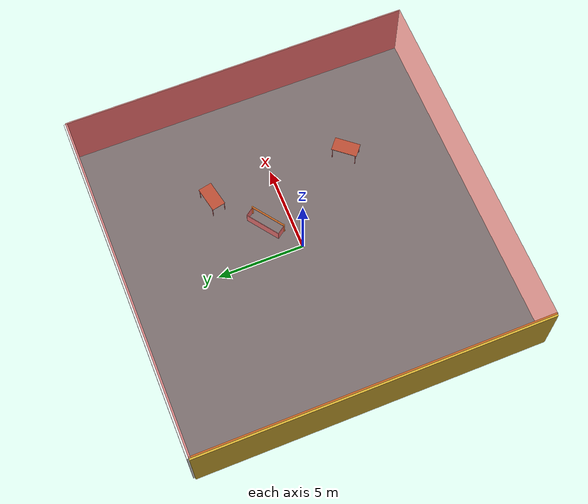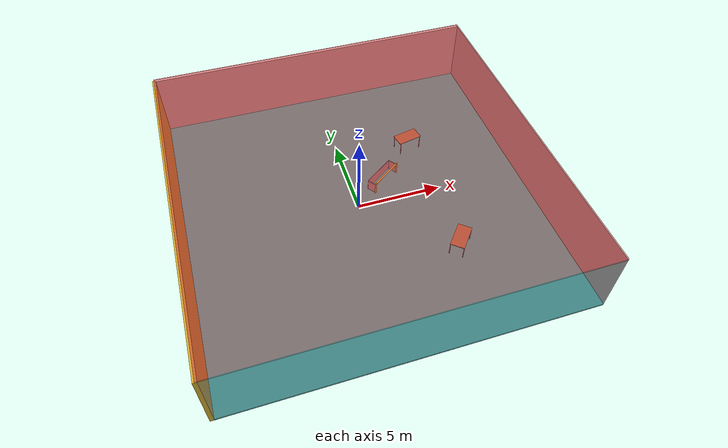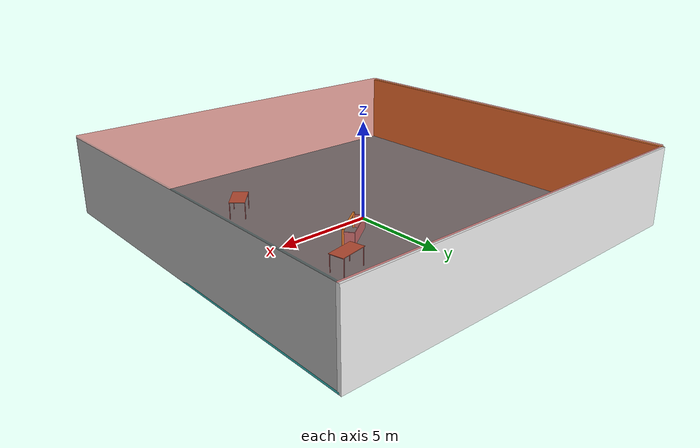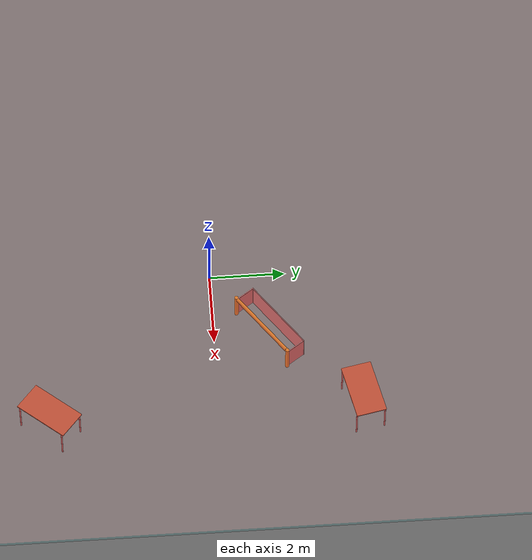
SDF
<sdf version="1.4">
 <world name="default">
  <physics type="ode">
   <max_step_size>0.001</max_step_size>
   <real_time_factor>1</real_time_factor>
   <real_time_update_rate>1000</real_time_update_rate>
   <gravity>0 0 -9.8</gravity>
  </physics>
  <scene><ambient>0.4 0.4 0.4 1</ambient><background>0.7 0.7 0.7 1</background><shadows>1</shadows></scene>
  <model name="Surrounding">
   <static>1</static>
   <link name="Ceiling">
    <collision name="Ceiling_Collision"><geometry><box><size>20 20 0.1</size></box></geometry></collision>
    <visual name="Ceiling_Visual">
     <geometry><box><size>20 20 0.1</size></box></geometry>
     <material>
      <script><uri>file://media/materials/scripts/gazebo.material</uri><name>Gazebo/RedTransparent</name></script>
     </material>
    </visual>
    <pose>0 0 4.05 0 0 0</pose>
   </link>
   <link name="Wall_South">
    <collision name="Wall_South_Collision">
     <geometry><box><size>20 0 4</size></box></geometry>
     <pose>0 0 2 0 -0 0</pose>
    </collision>
    <visual name="Wall_South_Visual">
     <pose>0 0 2 0 -0 0</pose>
     <geometry><box><size>20 0 4</size></box></geometry>
     <material>
      <script><uri>file://media/materials/scripts/gazebo.material</uri><name>Gazebo/GreyTransparent</name></script>
     </material>
    </visual>
    <velocity_decay><linear>0</linear><angular>0</angular></velocity_decay>
    <pose>0 -10 0 0 -0 0</pose>
   </link>
   <link name="Wall_East">
    <collision name="Wall_21_Collision">
     <geometry><box><size>20 0 4</size></box></geometry>
     <pose>0 0 2 0 -0 0</pose>
    </collision>
    <visual name="Wall_21_Visual">
     <pose>0 0 2 0 -0 0</pose>
     <geometry><box><size>20 0 4</size></box></geometry>
     <material>
      <script><uri>file://media/materials/scripts/gazebo.material</uri><name>Gazebo/CloudySky</name></script>
     </material>
    </visual>
    <velocity_decay><linear>0</linear><angular>0</angular></velocity_decay>
    <pose>10 0 0 0 -0 1.5708</pose>
   </link>
   <link name="Wall_North">
    <collision name="Wall_22_Collision">
     <geometry><box><size>20 0.2 4</size></box></geometry>
     <pose>0 0 2 0 -0 0</pose>
    </collision>
    <visual name="Wall_22_Visual">
     <pose>0 0 2 0 -0 0</pose>
     <geometry><box><size>20 0.2 4</size></box></geometry>
     <material>
      <script><uri>file://media/materials/scripts/gazebo.material</uri><name>Gazebo/WhiteGlow</name></script>
     </material>
    </visual>
    <velocity_decay><linear>0</linear><angular>0</angular></velocity_decay>
    <pose>0 10 0 0 -0 0</pose>
   </link>
   <link name="Wall_West">
    <collision name="Wall_23_Collision">
     <geometry><box><size>20 0.2 4</size></box></geometry>
     <pose>0 0 2 0 -0 0</pose>
    </collision>
    <visual name="Wall_23_Visual">
     <pose>0 0 2 0 -0 0</pose>
     <geometry><box><size>20 0.2 4</size></box></geometry>
     <material>
      <script><uri>file://media/materials/scripts/gazebo.material</uri><name>Gazebo/Gold</name></script>
     </material>
    </visual>
    <velocity_decay><linear>0</linear><angular>0</angular></velocity_decay>
    <pose>-10 0 0 0 0 -1.5708</pose>
   </link>
   <link name="Ground_link">
    <collision name="collision">
     <pose>0 0 .05 0 -0 0</pose>
     <geometry><box><size>20 20 0.1</size></box></geometry>
    </collision>
    <visual name="visual">
     <pose>0 0 .05 0 -0 0</pose>
     <geometry><box><size>20 20 0.1</size></box></geometry>
     <material>
      <script>
       <uri>file://media/materials/scripts/gazebo.material</uri>
       <name>Gazebo/TurquoiseGlowOutline</name>
      </script>
     </material>
    </visual>
   </link>
   <static>1</static>
  </model>
  <spherical_coordinates>
   <surface_model>EARTH_WGS84</surface_model>
   <latitude_deg>0</latitude_deg>
   <longitude_deg>0</longitude_deg>
   <elevation>0</elevation>
   <heading_deg>0</heading_deg>
  </spherical_coordinates>
  <light name="lightball_0" type="diffuse">
   <diffuse>0.8 0.8 0.8 1</diffuse>
   <specular>0.2 0.2 0.2 1</specular>
   <attenuation>
    <range>100</range>
    <constant>0.7</constant>
    <linear>0.01</linear>
    <quadratic>0.001</quadratic>
   </attenuation>
   <direction>-0.5 0.1 -0.9</direction>
   <pose>1.76862741102 0.596383354595 1.24913204208 0 0 0</pose>
  </light>
  <light name="lightball_1" type="diffuse">
   <diffuse>0.8 0.8 0.8 1</diffuse>
   <specular>0.2 0.2 0.2 1</specular>
   <attenuation>
    <range>100</range>
    <constant>0.7</constant>
    <linear>0.01</linear>
    <quadratic>0.001</quadratic>
   </attenuation>
   <direction>-0.5 0.1 -0.9</direction>
   <pose>-2.41459259246 -7.038002368 3.1151374388 0 0 0</pose>
  </light>
  <light name="lightball_2" type="diffuse">
   <diffuse>0.8 0.8 0.8 1</diffuse>
   <specular>0.2 0.2 0.2 1</specular>
   <attenuation>
    <range>100</range>
    <constant>0.7</constant>
    <linear>0.01</linear>
    <quadratic>0.001</quadratic>
   </attenuation>
   <direction>-0.5 0.1 -0.9</direction>
   <pose>9.41171915424 1.10720265147 2.20990218348 0 0 0</pose>
  </light>
  <light name="lightball_3" type="diffuse">
   <diffuse>0.8 0.8 0.8 1</diffuse>
   <specular>0.2 0.2 0.2 1</specular>
   <attenuation>
    <range>100</range>
    <constant>0.7</constant>
    <linear>0.01</linear>
    <quadratic>0.001</quadratic>
   </attenuation>
   <direction>-0.5 0.1 -0.9</direction>
   <pose>-5.62700484697 -7.21730056328 1.70547711276 0 0 0</pose>
  </light>
  <light name="lightball_4" type="diffuse">
   <diffuse>0.8 0.8 0.8 1</diffuse>
   <specular>0.2 0.2 0.2 1</specular>
   <attenuation>
    <range>100</range>
    <constant>0.7</constant>
    <linear>0.01</linear>
    <quadratic>0.001</quadratic>
   </attenuation>
   <direction>-0.5 0.1 -0.9</direction>
   <pose>5.8015335922 8.06778620367 1.68933157689 0 0 0</pose>
  </light>
  <light name="lightball_5" type="diffuse">
   <diffuse>0.8 0.8 0.8 1</diffuse>
   <specular>0.2 0.2 0.2 1</specular>
   <attenuation>
    <range>100</range>
    <constant>0.7</constant>
    <linear>0.01</linear>
    <quadratic>0.001</quadratic>
   </attenuation>
   <direction>-0.5 0.1 -0.9</direction>
   <pose>9.02318924554 5.00589356581 1.42304241915 0 0 0</pose>
  </light>
  <light name="lightball_6" type="diffuse">
   <diffuse>0.8 0.8 0.8 1</diffuse>
   <specular>0.2 0.2 0.2 1</specular>
   <attenuation>
    <range>100</range>
    <constant>0.7</constant>
    <linear>0.01</linear>
    <quadratic>0.001</quadratic>
   </attenuation>
   <direction>-0.5 0.1 -0.9</direction>
   <pose>2.8010000402 -3.90854103627 1.77786552272 0 0 0</pose>
  </light>
  <light name="lightball_7" type="diffuse">
   <diffuse>0.8 0.8 0.8 1</diffuse>
   <specular>0.2 0.2 0.2 1</specular>
   <attenuation>
    <range>100</range>
    <constant>0.7</constant>
    <linear>0.01</linear>
    <quadratic>0.001</quadratic>
   </attenuation>
   <direction>-0.5 0.1 -0.9</direction>
   <pose>5.62166290282 -7.4667816025 1.55245017343 0 0 0</pose>
  </light>
  <include>
   <uri>model://robocup_3Dsim_goal</uri>
   <pose>2.08067056511 1.25149467253 0 0 0 2.19163793846</pose>
  </include>
  <include><uri>model://table</uri><pose>4.41721458262 -4.4329032575 0 0 0 0.872197812799</pose></include>
  <include><uri>model://table</uri><pose>4.32184530526 3.75711556145 0 0 0 0.205110342423</pose></include>
 </world>
</sdf>

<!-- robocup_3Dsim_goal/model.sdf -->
<sdf version="1.5">
  <model name="robocup_3d_goal">
    <static>true</static>
    <link name="left_post">
      <pose>0 1.05 0.45 0 0 0</pose>
      <collision name="collision">
        <geometry>
          <cylinder>
            <radius>0.05</radius>
            <length>0.9</length>
          </cylinder>
        </geometry>
      </collision>
      <visual name="visual">
        <geometry>
          <cylinder>
            <radius>0.05</radius>
            <length>0.9</length>
          </cylinder>
        </geometry>
        <material>
          <script>
            <uri>file://media/materials/scripts/gazebo.material</uri>
            <name>Gazebo/ZincYellow</name>
          </script>
        </material>
      </visual>
    </link>
    <link name="left_support_horiz_lower">
      <pose>0.30 1.05 0.01 0 0 0</pose>
      <collision name="collision">
        <geometry>
          <box>
            <size>0.50 0.02 0.02</size>
          </box>
        </geometry>
      </collision>
      <visual name="visual">
        <geometry>
          <box>
            <size>0.50 0.02 0.02</size>
          </box>
        </geometry>
        <material>
          <script>
            <uri>file://media/materials/scripts/gazebo.material</uri>
            <name>Gazebo/White</name>
          </script>
        </material>
      </visual>
    </link>
    <link name="left_support_horiz_upper">
      <pose>0.30 1.05 0.79 0 0 0</pose>
      <collision name="collision">
        <geometry>
          <box>
            <size>0.50 0.02 0.02</size>
          </box>
        </geometry>
      </collision>
      <visual name="visual">
        <geometry>
          <box>
            <size>0.50 0.02 0.02</size>
          </box>
        </geometry>
        <material>
          <script>
            <uri>file://media/materials/scripts/gazebo.material</uri>
            <name>Gazebo/White</name>
          </script>
        </material>
      </visual>
    </link>
    <link name="left_support_vertical">
      <pose>0.56 1.05 0.4 0 1.5708 0</pose>
      <collision name="collision">
        <geometry>
          <box>
            <size>0.80 0.02 0.02</size>
          </box>
        </geometry>
      </collision>
      <visual name="visual">
        <geometry>
          <box>
            <size>0.80 0.02 0.02</size>
          </box>
        </geometry>
        <material>
          <script>
            <uri>file://media/materials/scripts/gazebo.material</uri>
            <name>Gazebo/White</name>
          </script>
        </material>
      </visual>
    </link>
    <link name="right_support_horiz_lower">
      <pose>0.30 -1.05 0.01 0 0 0</pose>
      <collision name="collision">
        <geometry>
          <box>
            <size>0.50 0.02 0.02</size>
          </box>
        </geometry>
      </collision>
      <visual name="visual">
        <geometry>
          <box>
            <size>0.50 0.02 0.02</size>
          </box>
        </geometry>
        <material>
          <script>
            <uri>file://media/materials/scripts/gazebo.material</uri>
            <name>Gazebo/White</name>
          </script>
        </material>
      </visual>
    </link>
    <link name="right_support_horiz_upper">
      <pose>0.30 -1.05 0.79 0 0 0</pose>
      <collision name="collision">
        <geometry>
          <box>
            <size>0.50 0.02 0.02</size>
          </box>
        </geometry>
      </collision>
      <visual name="visual">
        <geometry>
          <box>
            <size>0.50 0.02 0.02</size>
          </box>
        </geometry>
        <material>
          <script>
            <uri>file://media/materials/scripts/gazebo.material</uri>
            <name>Gazebo/White</name>
          </script>
        </material>
      </visual>
    </link>
    <link name="right_support_vertical">
      <pose>0.56 -1.05 0.4 0 1.5708 0</pose>
      <collision name="collision">
        <geometry>
          <box>
            <size>0.80 0.02 0.02</size>
          </box>
        </geometry>
      </collision>
      <visual name="visual">
        <geometry>
          <box>
            <size>0.80 0.02 0.02</size>
          </box>
        </geometry>
        <material>
          <script>
            <uri>file://media/materials/scripts/gazebo.material</uri>
            <name>Gazebo/White</name>
          </script>
        </material>
      </visual>
    </link>
    <link name="center_support_horiz_lower">
      <pose>0.56 0 0.01 0 1.5708 0</pose>
      <collision name="collision">
        <geometry>
          <box>
            <size>0.02 2.08 0.02</size>
          </box>
        </geometry>
      </collision>
      <visual name="visual">
        <geometry>
          <box>
            <size>0.02 2.08 0.02</size>
          </box>
        </geometry>
        <material>
          <script>
            <uri>file://media/materials/scripts/gazebo.material</uri>
            <name>Gazebo/White</name>
          </script>
        </material>
      </visual>
    </link>
    <link name="center_support_horiz_upper">
      <pose>0.56 0 0.79 0 1.5708 0</pose>
      <collision name="collision">
        <geometry>
          <box>
            <size>0.02 2.08 0.02</size>
          </box>
        </geometry>
      </collision>
      <visual name="visual">
        <geometry>
          <box>
            <size>0.02 2.08 0.02</size>
          </box>
        </geometry>
        <material>
          <script>
            <uri>file://media/materials/scripts/gazebo.material</uri>
            <name>Gazebo/White</name>
          </script>
        </material>
      </visual>
    </link>
    <link name="right_post">
      <pose>0 -1.05 0.45 0 0 0</pose>
      <collision name="collision">
        <geometry>
          <cylinder>
            <radius>0.05</radius>
            <length>0.9</length>
          </cylinder>
        </geometry>
      </collision>
      <visual name="visual">
        <geometry>
          <cylinder>
            <radius>0.05</radius>
            <length>0.9</length>
          </cylinder>
        </geometry>
        <material>
          <script>
            <uri>file://media/materials/scripts/gazebo.material</uri>
            <name>Gazebo/ZincYellow</name>
          </script>
        </material>
      </visual>
    </link>
    <link name="crossbar">
      <pose>0 0 0.85 1.57 1.57 0</pose>
      <collision name="collision">
        <geometry>
          <cylinder>
            <radius>0.05</radius>
            <length>2.0</length>
          </cylinder>
        </geometry>
      </collision>
      <visual name="visual">
        <geometry>
          <cylinder>
            <radius>0.05</radius>
            <length>2.0</length>
          </cylinder>
        </geometry>
        <material>
          <script>
            <uri>file://media/materials/scripts/gazebo.material</uri>
            <name>Gazebo/ZincYellow</name>
          </script>
        </material>
      </visual>
    </link>
    <link name="center_net">
      <pose>0.56 0 0.40 0 0 0</pose>
      <collision name="collision">
        <geometry>
          <box>
            <size>0.01 2.1 0.80</size>
          </box>
        </geometry>
      </collision>
      <visual name="visual">
        <geometry>
          <box>
            <size>0.01 2.1 0.80</size>
          </box>
        </geometry>
        <material>
          <script>
            <uri>model://../model_source/models/robocup09_spl_field/materials/scripts/</uri>
            <uri>model://../model_source/models/robocup09_spl_field/materials/textures/</uri>
            <name>RoboCup/Net</name>
          </script>
        </material>
      </visual>
    </link>
    <link name="left_net">
      <pose>0.30 1.05 0.40 0 0 0</pose>
      <collision name="collision">
        <geometry>
          <box>
            <size>0.50 0.01 0.76</size>
          </box>
        </geometry>
      </collision>
      <visual name="visual">
        <geometry>
          <box>
            <size>0.50 0.01 0.76</size>
          </box>
        </geometry>
        <material>
          <script>
            <uri>model://../model_source/models/robocup09_spl_field/materials/scripts/</uri>
            <uri>model://../model_source/models/robocup09_spl_field/materials/textures/</uri>
            <name>RoboCup/Net</name>
          </script>
        </material>
      </visual>
    </link>
    <link name="right_net">
      <pose>0.30 -1.05 0.40 0 0 0</pose>
      <collision name="collision">
        <geometry>
          <box>
            <size>0.50 0.01 0.76</size>
          </box>
        </geometry>
      </collision>
      <visual name="visual">
        <geometry>
          <box>
            <size>0.50 0.01 0.76</size>
          </box>
        </geometry>
        <material>
          <script>
            <uri>model://../model_source/models/robocup09_spl_field/materials/scripts/</uri>
            <uri>model://../model_source/models/robocup09_spl_field/materials/textures/</uri>
            <name>RoboCup/Net</name>
          </script>
        </material>
      </visual>
    </link>
  </model>
</sdf>

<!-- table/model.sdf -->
<sdf version="1.5">
  <model name="table">
    <static>true</static>
    <link name="link">
      <collision name="surface">
        <pose>0 0 1.0 0 0 0</pose>
        <geometry>
          <box>
            <size>1.5 0.8 0.03</size>
          </box>
        </geometry>
        <surface>
          <friction>
            <ode>
              <mu>0.6</mu>
              <mu2>0.6</mu2>
            </ode>
          </friction>
        </surface>
      </collision>
      <visual name="visual1">
        <pose>0 0 1.0 0 0 0</pose>
        <geometry>
          <box>
            <size>1.5 0.8 0.03</size>
          </box>
        </geometry>
        <material>
          <script>
            <uri>model://media/materials/scripts/gazebo.material</uri>
            <name>Gazebo/Wood</name>
          </script>
        </material>
      </visual>
      <collision name="front_left_leg">
        <pose>0.68 0.38 0.5 0 0 0</pose>
        <geometry>
          <cylinder>
            <radius>0.02</radius>
            <length>1.0</length>
          </cylinder>
        </geometry>
      </collision>
      <visual name="front_left_leg">
        <pose>0.68 0.38 0.5 0 0 0</pose>
        <geometry>
          <cylinder>
            <radius>0.02</radius>
            <length>1.0</length>
          </cylinder>
        </geometry>
        <material>
          <script>
            <uri>model://media/materials/scripts/gazebo.material</uri>
            <name>Gazebo/Grey</name>
          </script>
        </material>
      </visual>
      <collision name="front_right_leg">
        <pose>0.68 -0.38 0.5 0 0 0</pose>
        <geometry>
          <cylinder>
            <radius>0.02</radius>
            <length>1.0</length>
          </cylinder>
        </geometry>
      </collision>
      <visual name="front_right_leg">
        <pose>0.68 -0.38 0.5 0 0 0</pose>
        <geometry>
          <cylinder>
            <radius>0.02</radius>
            <length>1.0</length>
          </cylinder>
        </geometry>
        <material>
          <script>
            <uri>model://media/materials/scripts/gazebo.material</uri>
            <name>Gazebo/Grey</name>
          </script>
        </material>
      </visual>
      <collision name="back_right_leg">
        <pose>-0.68 -0.38 0.5 0 0 0</pose>
        <geometry>
          <cylinder>
            <radius>0.02</radius>
            <length>1.0</length>
          </cylinder>
        </geometry>
      </collision>
      <visual name="back_right_leg">
        <pose>-0.68 -0.38 0.5 0 0 0</pose>
        <geometry>
          <cylinder>
            <radius>0.02</radius>
            <length>1.0</length>
          </cylinder>
        </geometry>
        <material>
          <script>
            <uri>model://media/materials/scripts/gazebo.material</uri>
            <name>Gazebo/Grey</name>
          </script>
        </material>
      </visual>
      <collision name="back_left_leg">
        <pose>-0.68 0.38 0.5 0 0 0</pose>
        <geometry>
          <cylinder>
            <radius>0.02</radius>
            <length>1.0</length>
          </cylinder>
        </geometry>
      </collision>
      <visual name="back_left_leg">
        <pose>-0.68 0.38 0.5 0 0 0</pose>
        <geometry>
          <cylinder>
            <radius>0.02</radius>
            <length>1.0</length>
          </cylinder>
        </geometry>
        <material>
          <script>
            <uri>model://media/materials/scripts/gazebo.material</uri>
            <name>Gazebo/Grey</name>
          </script>
        </material>
      </visual>
    </link>
  </model>
</sdf>
